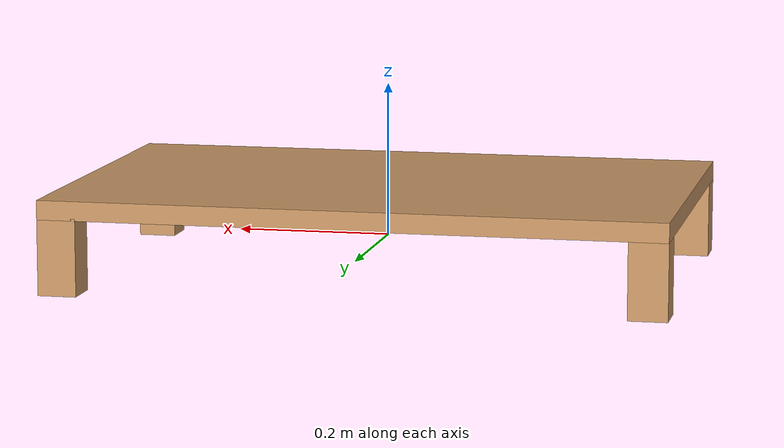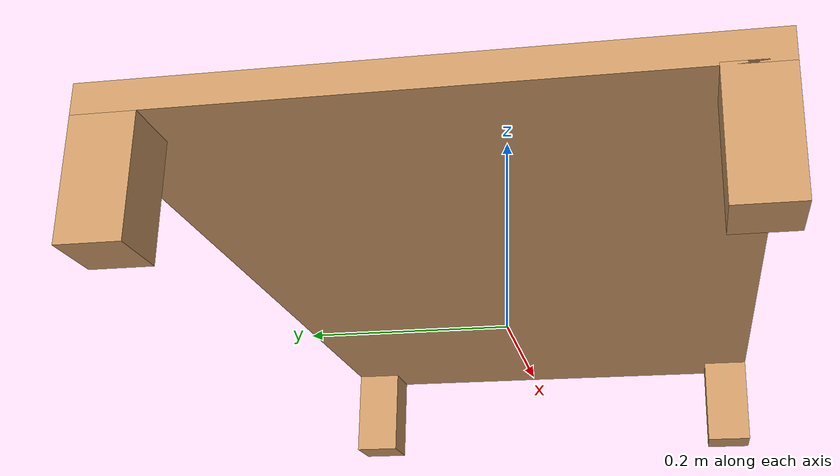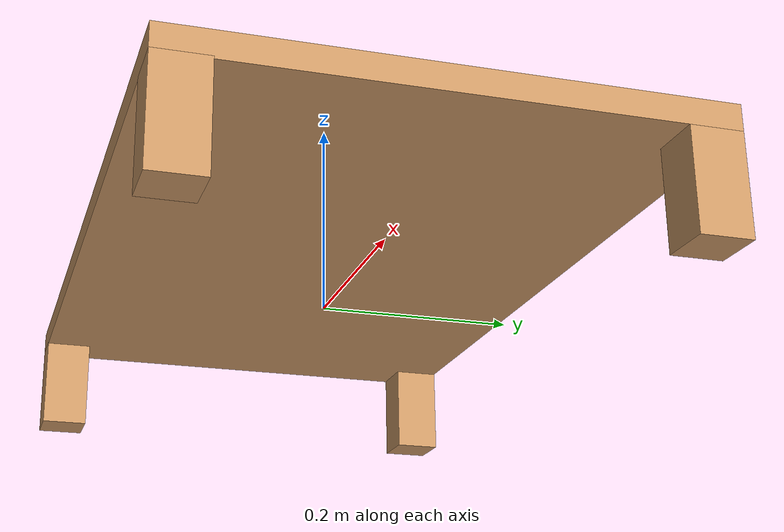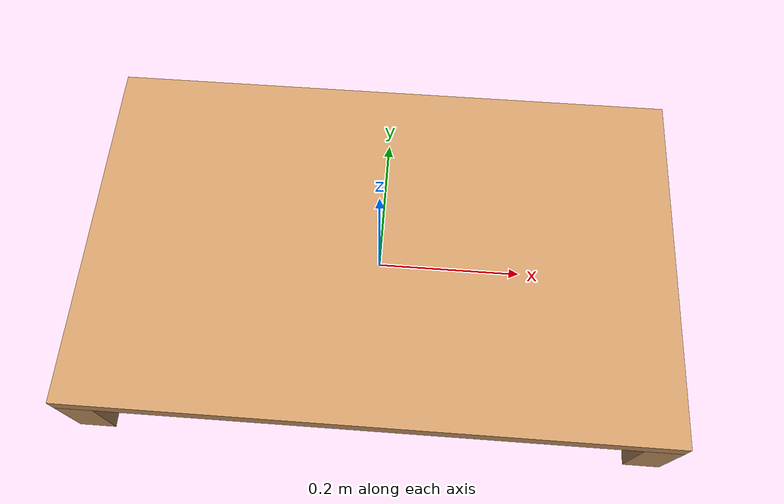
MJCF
<mujoco model="table_asset">
    <worldbody>
        <body name="table" pos="0 0 0">
            <!-- Legs -->
            <body name="bottom left" pos="-0.375 -0.225 0">
                <geom type="box" name ="bottom_l" size="0.025 0.025 0.05" rgba="0.8 0.6 0.4 1"/>
            </body>

            <body name="top left" pos="-0.375 0.225 0">
                <geom type="box" name="top_l" size="0.025 0.025 0.05" rgba="0.8 0.6 0.4 1"/>
            </body>

            <body name="bottom right" pos="0.375 -0.225 0">
                <geom type="box" name="bottom_r" size="0.025 0.025 0.05" rgba="0.8 0.6 0.4 1"/>
            </body>

            <body name="top right" pos="0.375 0.225 0">
                <geom type="box" name="top_r" size="0.025 0.025 0.05" rgba="0.8 0.6 0.4 1"/>
            </body>

            <!-- flat top -->

            <body name="table top" pos="0 0 0.06">
                <geom type="box" name="table_top_geom" size = "0.4 0.25 0.0125" rgba="0.8 0.6 0.4 1"/>
            </body>

        </body>

    </worldbody>
</mujoco>
